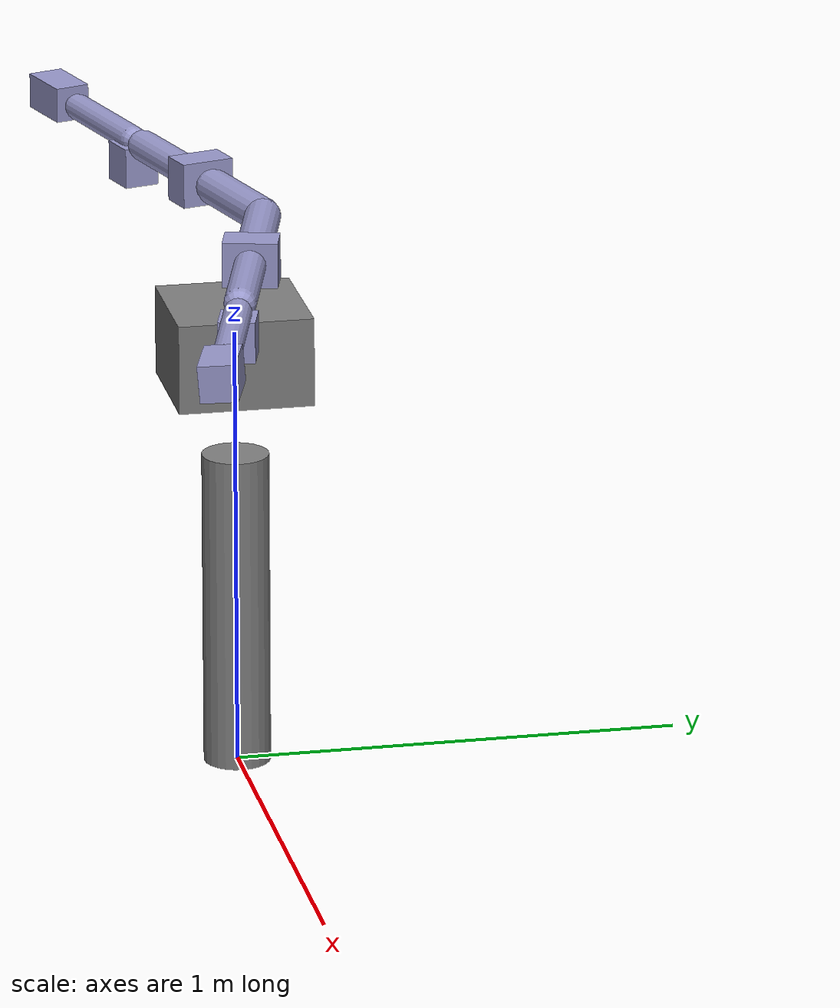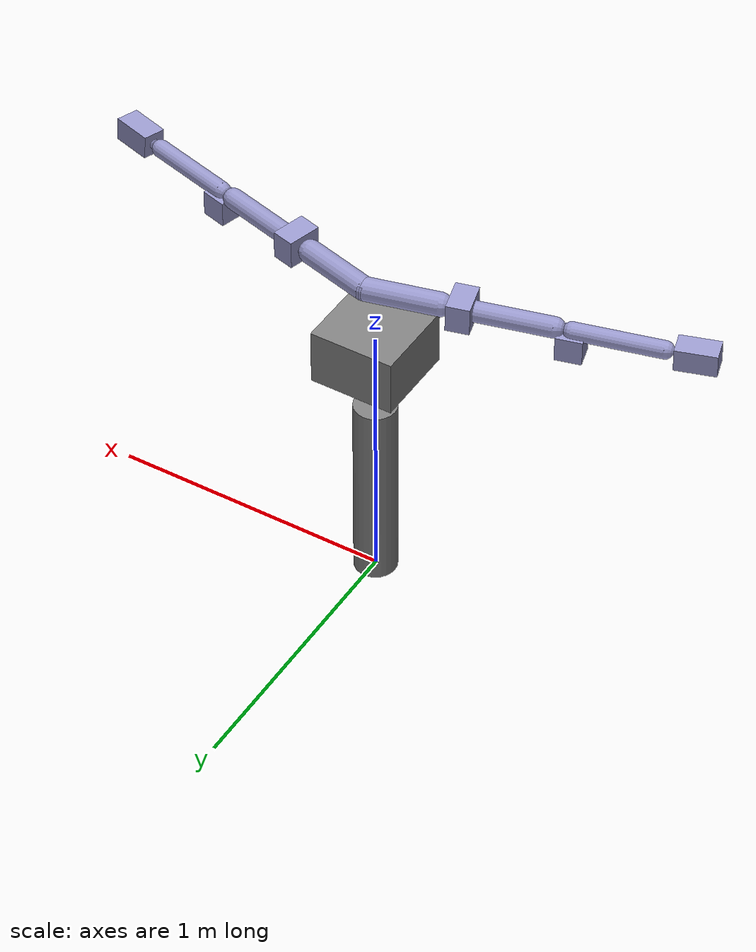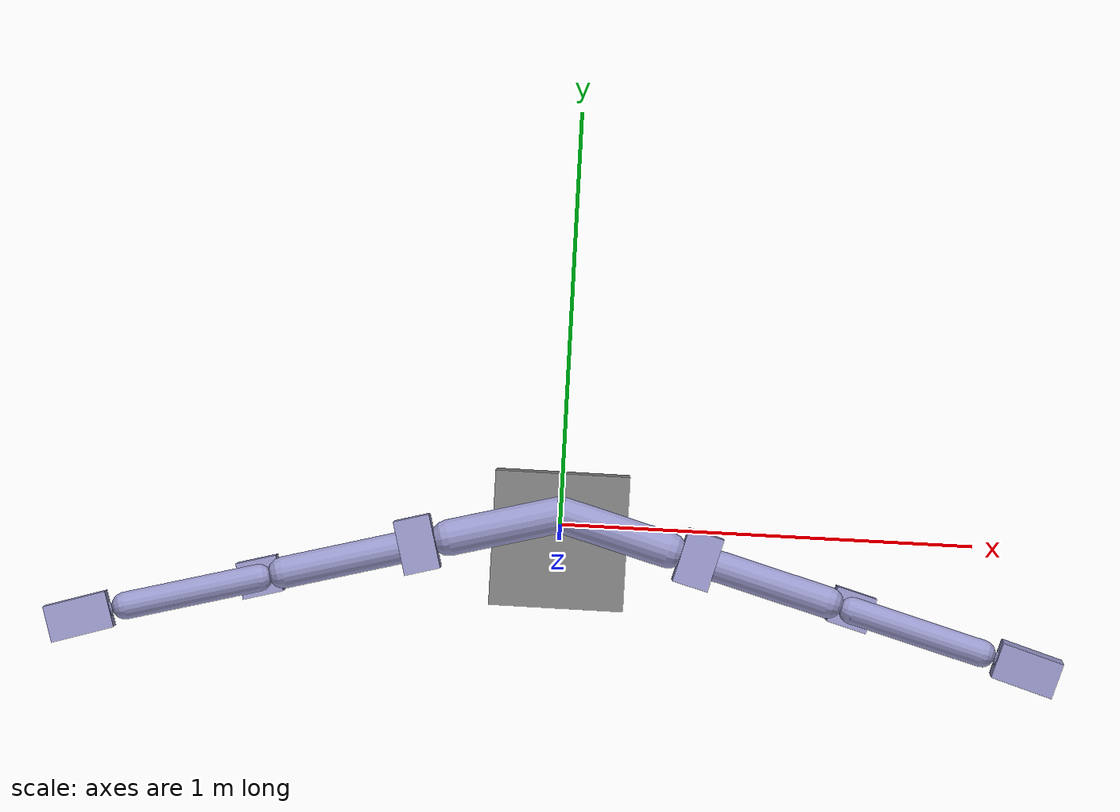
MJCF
<mujoco model="r2_mjx">
  <compiler angle="radian"/>

  <option integrator="implicitfast" timestep="0.004" iterations="4" ls_iterations="8"/>

  <default>
    <joint damping="10" frictionloss="0"/>
    <position inheritrange="1"/>
    <geom contype="0" conaffinity="0"/>
  </default>

  <worldbody>
    <body name="/r2/robot_world" pos="0 0 0">
      <inertial pos="0 0 0.625017" mass="56.01" diaginertia="14.6261 14.6252 12.001"/>
      <geom type="cylinder" size="0.075 0.36" pos="0 0 0.36" rgba="0.5 0.5 0.5 1"/>
      <body name="/r2/waist_center" pos="0 0 0.72" quat="0.0005651 -0.7056967 0.7085136 0.000561">
        <inertial pos="0.0000227 0 -0.0002704" mass="20.13" diaginertia="2.00426 2.00716 2.0042"/>
        <geom type="box" size="0.15 0.15 0.1" pos="0 0 -0.25" rgba="0.5 0.5 0.5 1"/>
        <body name="torso_frame" pos="0 0 0">

          <!-- ── Left arm ──────────────────────────────────────────────── -->
          <body name="/r2/left_shoulder_roll" pos="-0.065342 -0.0000013 -0.5442466" quat="0.0923553 -0.0919508 0.6995339 -0.702615">
            <joint name="/r2/left_arm/joint0" type="hinge" axis="0.0000013 -0.0000042 1" range="-1.57 1.57"/>
            <inertial pos="-0.0089916 -0.0013157 0.10287" mass="6.16886" fullinertia="0.0198585 0.0671901 0.063415 -0.0060196 -0.000395063 0.00012683"/>
            <geom type="capsule" size="0.04" fromto="0 0 0 0 0 0.25" rgba="0.6 0.6 0.8 1"/>
            <body name="/r2/left_shoulder_pitch" pos="0.0000006 0.0000009 0.3166114" quat="0.5001754 -0.4998249 -0.4998259 0.5001737">
              <joint name="/r2/left_arm/joint1" type="hinge" axis="-0.0000005 -0.0000003 1.0000003" range="-1.66 0.175"/>
              <inertial pos="0.037084 -0.0002845 0.0077978" mass="4.42706" fullinertia="0.0270106 0.0113837 0.0251963 0.00151295 -0.0000523825 0.0000217139"/>
              <geom type="box" size="0.05 0.04 0.06" rgba="0.6 0.6 0.8 1"/>
              <body name="/r2/left_upper_arm" pos="0 0 0" quat="0.7073899 0.7068235 0 0">
                <joint name="/r2/left_arm/joint2" type="hinge" axis="-0.0000016 -0.0000046 1.0000001" range="-4.89 -0.79"/>
                <inertial pos="-0.0074168 -0.041402 0.1016" mass="4.85344" fullinertia="0.0160074 0.0462371 0.0421401 -0.00339462 0.00658439 0.00137541"/>
                <geom type="capsule" size="0.035" fromto="0 0 0 0 0 0.3" rgba="0.6 0.6 0.8 1"/>
                <body name="/r2/left_elbow" pos="-0.0543775 -0.0000012 0.3564373" quat="0.7056915 -0.7085192 0 0">
                  <joint name="/r2/left_arm/joint3" type="hinge" axis="-0.0000005 0 1.0000001" range="-2.79 -0.087" damping="1"/>
                  <inertial pos="0.026162 0.033782 0.0154432" mass="2.97103" fullinertia="0.0120275 0.00883772 0.010535 0.00164171 -0.00118812 0.00316051"/>
                  <geom type="box" size="0.045 0.045 0.04" rgba="0.6 0.6 0.8 1"/>
                  <body name="/r2/left_lower_arm" pos="0.0540307 -0.0000001 -0.0000003" quat="0.7060457 0.7081663 0 0">
                    <joint name="/r2/left_arm/joint4" type="hinge" axis="-0.0000016 -0.0000044 1" range="-1.3 4.45" damping="1"/>
                    <inertial pos="0.0003556 -0.0012268 0.17653" mass="6.93996" fullinertia="0.012525 0.0395064 0.0403843 -0.000244647 0.000520899 -0.000169146"/>
                    <geom type="capsule" size="0.03" fromto="0 0 0 0 0 0.3" rgba="0.6 0.6 0.8 1"/>
                    <body name="/r2/left_wrist_pitch" pos="0.0000067 -0.0000012 0.3570483" quat="0.698428 -0.7156803 0 0">
                      <joint name="/r2/left_arm/joint5" type="hinge" axis="-0.0000005 0.0000002 0.9999995" range="-1.22 1.22" damping="1"/>
                      <inertial pos="-0.004064 0.0000002 -0.000922" mass="0.116573" diaginertia="0.00005765 0.0000441886 0.0000169438"/>
                      <geom type="sphere" size="0.03" rgba="0.6 0.6 0.8 1"/>
                      <body name="/r2/left_wrist_yaw" pos="-0.0000206 -0.0060721 -0.0000003" quat="0.479224 0.5190296 -0.5200193 -0.480138">
                        <joint name="/r2/left_arm/joint6" type="hinge" axis="0.0000001 0.0000039 1" range="-0.785 0.785" damping="1"/>
                        <inertial pos="0.0332051 -0.0258121 0.0332857" mass="2.37882" fullinertia="0.0112391 0.0135826 0.0112115 0.000520047 0.00298821 0.000437366"/>
                        <geom type="box" size="0.07 0.04 0.04" pos="0.04 0 0" rgba="0.6 0.6 0.8 1"/>
                        <body name="left_hand_frame" pos="0 0 0" quat="0.596562 -0.026919 -0.030512 -0.801535"/>
                      </body>
                    </body>
                  </body>
                </body>
              </body>
            </body>
          </body>

          <!-- ── Right arm ─────────────────────────────────────────────── -->
          <body name="/r2/right_shoulder_roll" pos="-0.065342 -0.0000013 -0.5442466" quat="0.7049792 -0.6971348 0.0916978 -0.0927301">
            <joint name="/r2/right_arm/joint0" type="hinge" axis="0.0000024 -0.0000045 0.9999995" range="-1.57 1.57"/>
            <inertial pos="0.0089916 -0.0013157 0.10287" mass="6.16886" fullinertia="0.0198585 0.0671901 0.063415 0.0060196 0.000395063 0.00012683"/>
            <geom type="capsule" size="0.04" fromto="0 0 0 0 0 0.25" rgba="0.6 0.6 0.8 1"/>
            <body name="/r2/right_shoulder_pitch" pos="0.0000008 -0.0000061 0.3209286" quat="0.501771 0.498223 -0.498222 -0.5017713">
              <joint name="/r2/right_arm/joint1" type="hinge" axis="-0.0000004 0.0000019 1.0000001" range="-1.66 0.175"/>
              <inertial pos="0.0077978 0.037084 0.0002845" mass="4.42706" fullinertia="0.0113837 0.0251963 0.0270106 -0.0000217139 -0.00151295 -0.0000523825"/>
              <geom type="box" size="0.05 0.04 0.06" rgba="0.6 0.6 0.8 1"/>
              <body name="/r2/right_upper_arm" pos="0 0 0" quat="0.70813 -0.706082 0 0">
                <joint name="/r2/right_arm/joint2" type="hinge" axis="0.0000033 0.0000011 0.9999999" range="0.785 4.89"/>
                <inertial pos="0.041402 -0.0074168 0.1016" mass="4.85344" fullinertia="0.0421401 0.0462371 0.0160074 -0.00137541 -0.00658439 -0.00339462"/>
                <geom type="capsule" size="0.035" fromto="0 0 0 0 0 0.3" rgba="0.6 0.6 0.8 1"/>
                <body name="/r2/right_elbow" pos="0.0535992 0.0000004 0.3552188" quat="0.7079535 0.706259 0 0">
                  <joint name="/r2/right_arm/joint3" type="hinge" axis="-0.0000004 0.0000014 1.0000003" range="-2.79 -0.087" damping="1"/>
                  <inertial pos="-0.026162 0.033782 0.0154432" mass="2.97103" fullinertia="0.0120275 0.00883772 0.010535 -0.00118812 0.00164171 -0.00316051"/>
                  <geom type="box" size="0.045 0.045 0.04" rgba="0.6 0.6 0.8 1"/>
                  <body name="/r2/right_lower_arm" pos="-0.0537437 0.000001 0" quat="0.7089416 -0.7052672 0 0">
                    <joint name="/r2/right_arm/joint4" type="hinge" axis="0.0000033 0.0000017 1.0000002" range="-4.45 1.31" damping="1"/>
                    <inertial pos="0.0003556 -0.0012268 0.17653" mass="6.93996" fullinertia="0.012525 0.0395064 0.0403843 0.000244647 0.000520899 0.000169146"/>
                    <geom type="capsule" size="0.03" fromto="0 0 0 0 0 0.3" rgba="0.6 0.6 0.8 1"/>
                    <body name="/r2/right_wrist_pitch" pos="0.000007 0.0000008 0.3569461" quat="0.7203774 0.6935823 0 0">
                      <joint name="/r2/right_arm/joint5" type="hinge" axis="-0.0000003 0.0000011 1.0000003" range="-1.22 1.22" damping="1"/>
                      <inertial pos="0.000922 -0.004064 0.0000002" mass="0.116573" diaginertia="0.0000169438 0.00005765 0.0000441886"/>
                      <geom type="sphere" size="0.03" rgba="0.6 0.6 0.8 1"/>
                      <body name="/r2/right_wrist_yaw" pos="-0.0001457 0.0064917 0.0000005" quat="0.4969628 0.4922181 0.5029169 0.5077636">
                        <joint name="/r2/right_arm/joint6" type="hinge" axis="0 0.0000047 1.0000005" range="-0.785 0.785" damping="1"/>
                        <inertial pos="0.0637396 -0.0002072 0.0218989" mass="1.33941" fullinertia="0.00516672 0.00807358 0.00654117 -0.0000580194 -0.000187327 0.000316215"/>
                        <geom type="box" size="0.07 0.04 0.04" pos="0.04 0 0" rgba="0.6 0.6 0.8 1"/>
                        <body name="right_hand_frame" pos="0 0 0" quat="0.803875 0.007217 -0.000783 -0.594753"/>
                      </body>
                    </body>
                  </body>
                </body>
              </body>
            </body>
          </body>

        </body>
      </body>
    </body>
  </worldbody>

  <actuator>
    <position name="/r2/left_arm/joint0_servo"  joint="/r2/left_arm/joint0"  kp="50"/>
    <position name="/r2/left_arm/joint1_servo"  joint="/r2/left_arm/joint1"  kp="50"/>
    <position name="/r2/left_arm/joint2_servo"  joint="/r2/left_arm/joint2"  kp="50"/>
    <position name="/r2/left_arm/joint3_servo"  joint="/r2/left_arm/joint3"  kp="50"/>
    <position name="/r2/left_arm/joint4_servo"  joint="/r2/left_arm/joint4"  kp="50"/>
    <position name="/r2/left_arm/joint5_servo"  joint="/r2/left_arm/joint5"  kp="50"/>
    <position name="/r2/left_arm/joint6_servo"  joint="/r2/left_arm/joint6"  kp="50"/>
    <position name="/r2/right_arm/joint0_servo" joint="/r2/right_arm/joint0" kp="50"/>
    <position name="/r2/right_arm/joint1_servo" joint="/r2/right_arm/joint1" kp="50"/>
    <position name="/r2/right_arm/joint2_servo" joint="/r2/right_arm/joint2" kp="50"/>
    <position name="/r2/right_arm/joint3_servo" joint="/r2/right_arm/joint3" kp="50"/>
    <position name="/r2/right_arm/joint4_servo" joint="/r2/right_arm/joint4" kp="50"/>
    <position name="/r2/right_arm/joint5_servo" joint="/r2/right_arm/joint5" kp="50"/>
    <position name="/r2/right_arm/joint6_servo" joint="/r2/right_arm/joint6" kp="50"/>
  </actuator>

</mujoco>
